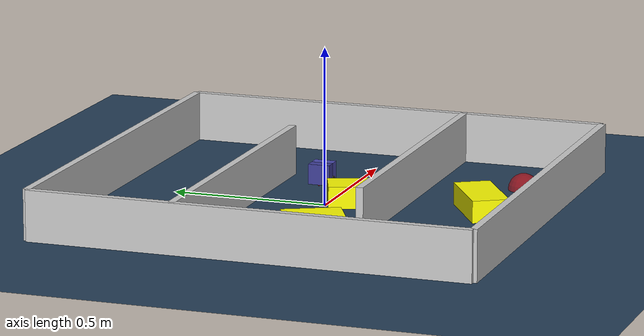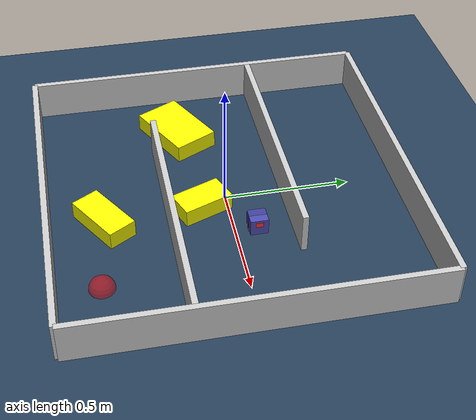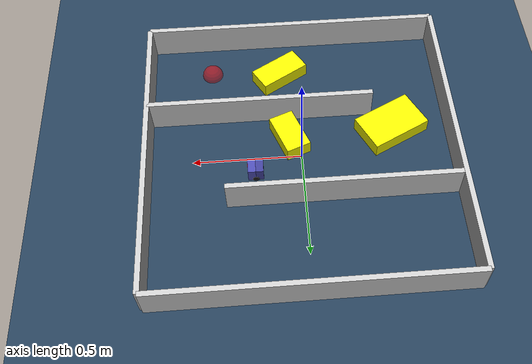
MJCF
<?xml version='1.0' encoding='utf-8'?>
<mujoco model="generated_environment">
  <option timestep="0.002" integrator="implicitfast" cone="elliptic" iterations="100" gravity="0 0 -9.81" />
  <default>
    <geom density="1" />
  </default>
  <asset>
    <texture builtin="gradient" height="3072" rgb1="0.3 0.5 0.7" rgb2="0 0 0" type="skybox" width="512" />
    <texture builtin="checker" height="300" mark="edge" markrgb="0.8 0.8 0.8" name="groundplane" rgb1="0.2 0.3 0.4" rgb2="0.1 0.2 0.3" type="2d" width="300" />
    <material name="groundplane" reflectance="0.2" texrepeat="5 5" texture="groundplane" texuniform="true" />
    <material name="robot" rgba="1.0 1.0 0.0 1.0" />
  </asset>
  <worldbody>
    <light dir="0 0 -1" directional="true" pos="0 0 1.5" />
    <geom condim="4" friction="0.5 0.005 0.001" material="groundplane" name="floor" size="0 0 0.05" type="plane" />
    <body name="walls">
      <geom name="wall_1" condim="4" pos="-0.699000 0.000000 0.080000" rgba="0.800000011920929 0.800000011920929 0.800000011920929 1.0" size="0.011650 0.699000 0.080000" type="box" />
      <geom name="wall_2" condim="4" pos="0.699000 0.000000 0.080000" rgba="0.800000011920929 0.800000011920929 0.800000011920929 1.0" size="0.011650 0.699000 0.080000" type="box" />
      <geom name="wall_3" condim="4" pos="0.000000 -0.699000 0.080000" rgba="0.800000011920929 0.800000011920929 0.800000011920929 1.0" size="0.699000 0.011650 0.080000" type="box" />
      <geom name="wall_4" condim="4" pos="0.000000 0.699000 0.080000" rgba="0.800000011920929 0.800000011920929 0.800000011920929 1.0" size="0.699000 0.011650 0.080000" type="box" />
      <geom name="wall_5" condim="4" pos="0.174750 -0.233000 0.080000" rgba="0.800000011920929 0.800000011920929 0.800000011920929 1.0" size="0.524250 0.011650 0.080000" type="box" />
      <geom name="wall_6" condim="4" pos="-0.174750 0.233000 0.080000" rgba="0.800000011920929 0.800000011920929 0.800000011920929 1.0" size="0.524250 0.011650 0.080000" type="box" />
    </body>
    <body name="car" pos="0.21499999999999997 0.08500000000000008 0.010000">
      <freejoint name="car_freejoint" />
      <inertial pos="0.000000 0 0.037500" mass="0.350000" diaginertia="0.000266 0.000266 0.000286" />
      <geom name="front_chassis_collision" type="box" pos="0.017500 0 0.037500" size="0.017500 0.035000 0.032500" rgba="0.3 0.3 0.7 1" />
      <geom name="rear_chassis_collision" type="box" pos="-0.017500 0 0.037500" size="0.017500 0.035000 0.032500" rgba="0.25 0.25 0.6 1" />
      <geom name="front_marker" type="box" pos="0.034000 0 0.050500" size="0.002000 0.015000 0.010000" rgba="1.0 0.2 0.2 1" contype="0" conaffinity="0" />
      <body name="rear_support_body" pos="-0.030000 0.000000 0.002500">
        <joint name="rear_caster_joint" type="ball" damping="0.0001" />
        <inertial pos="0 0 0" mass="0.025000" diaginertia="0.000001 0.000001 0.000001" />
        <geom name="rear_support" type="sphere" pos="0 0 0" size="0.002500" friction="0.000000 0.000000 0.000000" rgba="0.7 0.1 0.1 1" />
      </body>
      <body name="front_support_body" pos="0.030000 0.000000 0.002500">
        <joint name="front_caster_joint" type="ball" damping="0.0001" />
        <inertial pos="0 0 0" mass="0.025000" diaginertia="0.000001 0.000001 0.000001" />
        <geom name="front_support" type="sphere" pos="0 0 0" size="0.002500" friction="0.000000 0.000000 0.000000" rgba="0.1 0.7 0.1 1" />
      </body>
      <body name="left_wheel" pos="0.000000 0.037500 0.015000">
        <inertial pos="0 0 0" mass="0.050000" diaginertia="0.000003 0.000006 0.000003" />
        <joint name="left_wheel_joint" type="hinge" axis="0 1 0" />
        <geom name="left_wheel_collision" type="cylinder" size="0.015000 0.000500" euler="90 0 0" rgba="0.1 0.1 0.1 1" />
      </body>
      <body name="right_wheel" pos="0.000000 -0.037500 0.015000">
        <inertial pos="0 0 0" mass="0.050000" diaginertia="0.000003 0.000006 0.000003" />
        <joint name="right_wheel_joint" type="hinge" axis="0 1 0" />
        <geom name="right_wheel_collision" type="cylinder" size="0.015000 0.000500" euler="90 0 0" rgba="0.1 0.1 0.1 1" />
      </body>
    </body>
    <body name="obstacle_0_movable">
      <geom name="obstacle_0_movable" condim="4" pos="-0.43081482102898344 -0.12644955905916944 0.035" euler="0 0 116.90007628736447" friction="0.0 0.005 0.001" rgba="1 1 0 1" size="0.09263090904266787 0.1451556319369791 0.035" type="box" mass="0.1" />
      <joint type="free" />
    </body>
    <body name="obstacle_1_movable">
      <geom name="obstacle_1_movable" condim="4" pos="0.048808615089483864 -0.10070978281379539 0.035" euler="0 0 291.4310966587988" friction="0.0 0.005 0.001" rgba="1 1 0 1" size="0.1023364119459983 0.05802812213022213 0.035" type="box" mass="0.1" />
      <joint type="free" />
    </body>
    <body name="obstacle_2_movable">
      <geom name="obstacle_2_movable" condim="4" pos="0.07424961854794343 -0.48550773791763807 0.035" euler="0 0 121.22662977074648" friction="0.0 0.005 0.001" rgba="1 1 0 1" size="0.05847070386422736 0.1212468154227536 0.035" type="box" mass="0.1" />
      <joint type="free" />
    </body>
    <site name="goal" type="sphere" pos="0.4049999999999999 -0.525 0.0" size="0.05" rgba="1 0 0 0.5" />
  </worldbody>
  <actuator>
    <velocity name="left_wheel_drive" joint="left_wheel_joint" ctrlrange="-25.000000 25.000000" kv="0.750000" forcerange="-0.300000 0.300000" />
    <velocity name="right_wheel_drive" joint="right_wheel_joint" ctrlrange="-25.000000 25.000000" kv="0.750000" forcerange="-0.300000 0.300000" />
  </actuator>
</mujoco>
